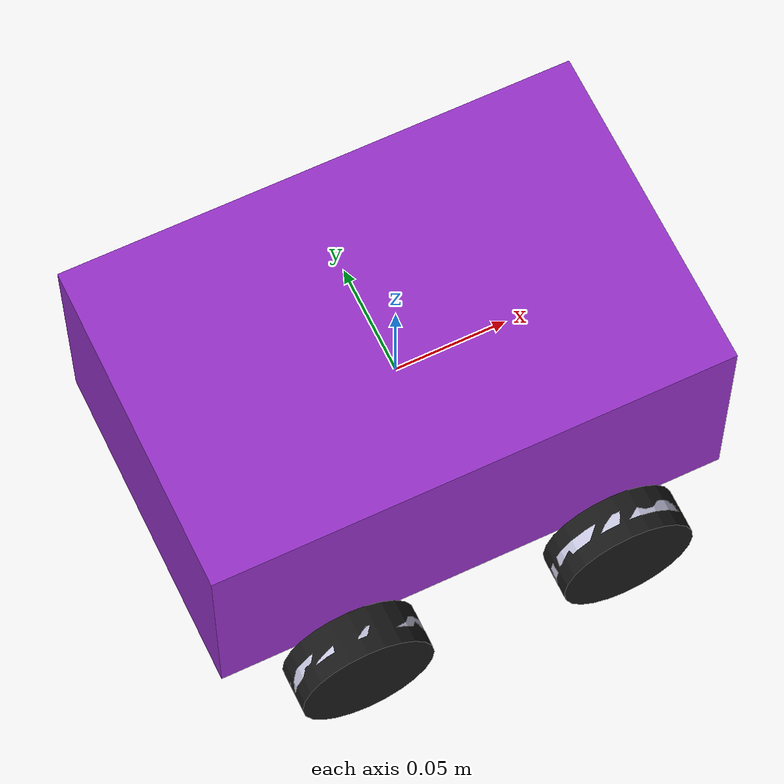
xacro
<?xml version="1.0"?>
<robot name="rover" xmlns:xacro="http://www.ros.org/wiki/xacro">

    <!-- Define Parameters -->
    <xacro:property name="wheel_radius" value="0.03"/>
    <xacro:property name="wheel_length" value="0.02"/>
    <xacro:property name="rim_length" value="0.005"/>
    <xacro:property name="core_length" value="0.01"/>
    <xacro:property name="core_radius" value="0.025"/>
    <xacro:property name="body_size" value="0.23 0.15 0.10"/>
    <xacro:property name="wheel_separation" value="0.15"/>
    <xacro:property name="wheel_offset_x" value="0.06"/>
    <xacro:property name="wheel_offset_y" value="0.09"/>
    <xacro:property name="wheel_offset_z" value="-0.055"/>

    <!-- Define Materials -->
    <material name="metallic_gray">
        <color rgba="0.3 0.3 0.3 1.0"/>
    </material>
    <material name="chrome_silver">
        <color rgba="0.8 0.8 0.9 1.0"/>
    </material>
    <material name="holo_purple">
        <color rgba="0.6 0.2 0.8 1.0"/>
    </material>
    <material name="tire_tread">
        <color rgba="0.1 0.1 0.1 1.0"/>
    </material>

    <!-- Base Link (Main Body) -->
    <link name="base_link">
        <visual>
          <gazebo reference="base_link">
          <mu1>0.2</mu1>
          <mu2>0.2</mu2>
        <material>Gazebo/Purple</material>
          </gazebo>

            <geometry>
                <box size="${body_size}"/>
            </geometry>
            <material name="holo_purple"/>

        </visual>
        <collision>
            <geometry>
                <box size="${body_size}"/>
            </geometry>
        </collision>
    </link>

    <!-- Dummy Link to hold inertia -->
    <link name="base_dummy">
        <inertial>
            <mass value="2.0"/>
            <origin xyz="0 0 0"/>
            <inertia ixx="0.02" iyy="0.02" izz="0.02" ixy="0" ixz="0" iyz="0"/>
        </inertial>
    </link>

    <joint name="base_dummy_joint" type="fixed">
        <parent link="base_link"/>
        <child link="base_dummy"/>
        <origin xyz="0 0 0"/>
    </joint>

    <!-- Wheel Macro -->
    <xacro:macro name="wheel" params="wheel_name">
        <link name="${wheel_name}">
            <visual>
                <geometry>
                    <cylinder length="${wheel_length}" radius="${wheel_radius}"/>
                </geometry>
                <material name="tire_tread"/>
            </visual>

            <!-- Collision Geometry -->
            <collision>
                <geometry>
                    <cylinder length="${wheel_length}" radius="${wheel_radius}"/>
                </geometry>
            </collision>

            <visual>
                <gazebo reference="${wheel_name}">
                   <mu1>0.2</mu1>
                   <mu2>0.2</mu2>
                   <material>Gazebo/Black</material>
                </gazebo>
                <geometry>
                    <cylinder length="${rim_length}" radius="${wheel_radius}"/>
                </geometry>
                <material name="chrome_silver"/>
            </visual>
            <visual>
                <geometry>
                    <cylinder length="${core_length}" radius="${core_radius}"/>
                </geometry>
                <material name="metallic_gray"/>
            </visual>

            <!-- Inertial for Physics -->
            <inertial>
                <mass value="0.5"/>  <!-- Adjust mass as needed -->
                <origin xyz="0 0 0"/>
                <inertia ixx="0.01" iyy="0.01" izz="0.01" ixy="0" ixz="0" iyz="0"/>
            </inertial>
        </link>
    </xacro:macro>

    <!-- Generate Wheels -->
    <xacro:wheel wheel_name="front_left_wheel"/>
    <xacro:wheel wheel_name="front_right_wheel"/>
    <xacro:wheel wheel_name="rear_left_wheel"/>
    <xacro:wheel wheel_name="rear_right_wheel"/>

    <!-- Wheel Joint Macro -->
    <xacro:macro name="wheel_joint" params="joint_name parent_link child_link x_offset y_offset">
        <joint name="${joint_name}" type="continuous">
            <parent link="${parent_link}"/>
            <child link="${child_link}"/>
            <origin xyz="${x_offset} ${y_offset} ${wheel_offset_z}" rpy="${pi/2} 0 0"/>
            <axis xyz="0 0 1"/>
        </joint>
    </xacro:macro>

    <!-- Generate Joints -->
    <xacro:wheel_joint joint_name="front_left_wheel_joint" parent_link="base_dummy" child_link="front_left_wheel" x_offset="-${wheel_offset_x}" y_offset="${wheel_offset_y}"/>
    <xacro:wheel_joint joint_name="front_right_wheel_joint" parent_link="base_dummy" child_link="front_right_wheel" x_offset="${wheel_offset_x}" y_offset="${wheel_offset_y}"/>
    <xacro:wheel_joint joint_name="rear_left_wheel_joint" parent_link="base_dummy" child_link="rear_left_wheel" x_offset="-${wheel_offset_x}" y_offset="-${wheel_offset_y}"/>
    <xacro:wheel_joint joint_name="rear_right_wheel_joint" parent_link="base_dummy" child_link="rear_right_wheel" x_offset="${wheel_offset_x}" y_offset="-${wheel_offset_y}"/>

   <gazebo>
      <plugin name="skid_steer_drive_controller" filename="libgazebo_ros_skid_steer_drive.so">
       <updateRate>100.0</updateRate>
       <!-- Define Left and Right Wheels -->
       <leftFrontJoint>front_left_wheel_joint</leftFrontJoint>
       <leftRearJoint>rear_left_wheel_joint</leftRearJoint>
       <rightFrontJoint>front_right_wheel_joint</rightFrontJoint>
       <rightRearJoint>rear_right_wheel_joint</rightRearJoint>
       <wheelSeparation>${wheel_separation}</wheelSeparation>
       <wheelDiameter>${wheel_radius * 2}</wheelDiameter>
       <torque>1000</torque>
       <commandTopic>/rover/base_controller/cmd_vel</commandTopic>
       <odometryTopic>/rover/base_controller/odom</odometryTopic>
       <odometryFrame>odom</odometryFrame>
       <robotBaseFrame>base_dummy</robotBaseFrame>
       <publishWheelTF>true</publishWheelTF>
       <publishOdom>true</publishOdom>
       <publishWheelJointState>true</publishWheelJointState>
       <covariance_x>0.0001</covariance_x>
       <covariance_y>0.0001</covariance_y>
       <covariance_yaw>0.01</covariance_yaw>
      </plugin>
    </gazebo>
</robot>
